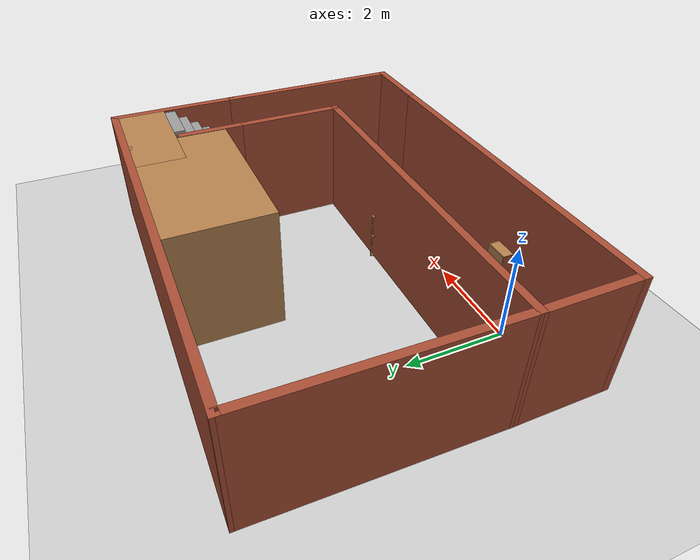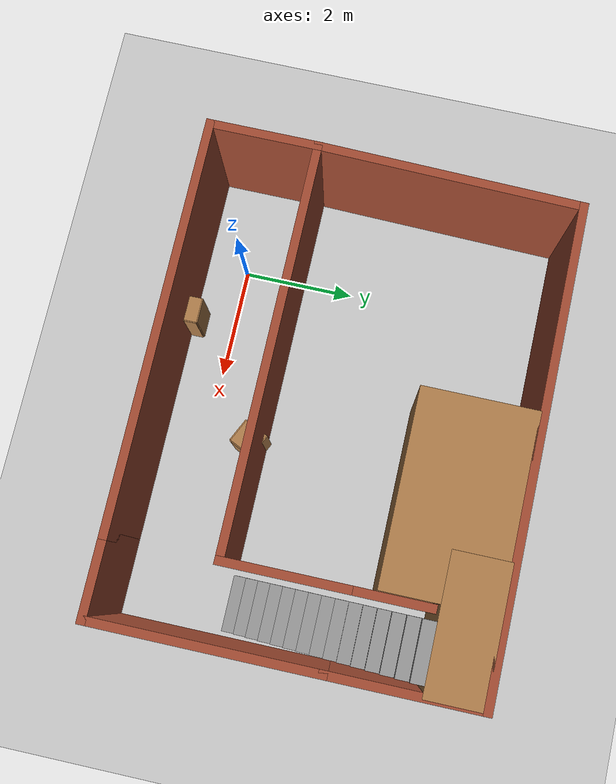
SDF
<sdf version="1.7">
 <world name="default">
  <model name="ground_plane">
   <static>1</static>
   <link name="link">
    <collision name="collision">
     <geometry><plane><normal>0 0 1</normal><size>100 100</size></plane></geometry>
     <surface>
      <contact><collide_bitmask>65535</collide_bitmask></contact>
      <friction><ode><mu>100</mu><mu2>50</mu2></ode></friction>
     </surface>
    </collision>
    <visual name="visual">
     <cast_shadows>0</cast_shadows>
     <geometry><plane><normal>0 0 1</normal><size>100 100</size></plane></geometry>
     <material>
      <script><uri>file://media/materials/scripts/gazebo.material</uri><name>Gazebo/Grey</name></script>
     </material>
    </visual>
   </link>
  </model>
  <model name="2F_DEMO">
   <pose>2.49908 2.39146 0 0 -0 0</pose>
   <link name="Stairs_0">
    <visual name="Stairs_0_Visual_0">
     <pose>3.55799 -1.19298 0.083333 0 -0 -3.14159</pose>
     <geometry><box><size>1 0.233333 0.166667</size></box></geometry>
     <material>
      <script><uri>file://media/materials/scripts/gazebo.material</uri><name>Gazebo/Grey</name></script>
      <ambient>1 1 1 1</ambient>
     </material>
     <meta><layer>0</layer></meta>
    </visual>
    <collision name="Stairs_0_Collision_0">
     <geometry><box><size>1 0.233333 0.166667</size></box></geometry>
     <pose>3.55799 -1.19298 0.083333 0 -0 -3.14159</pose>
    </collision>
    <visual name="Stairs_0_Visual_1">
     <pose>3.55799 -0.959651 0.25 0 -0 -3.14159</pose>
     <geometry><box><size>1 0.233333 0.166667</size></box></geometry>
     <material>
      <script><uri>file://media/materials/scripts/gazebo.material</uri><name>Gazebo/Grey</name></script>
      <ambient>1 1 1 1</ambient>
     </material>
     <meta><layer>0</layer></meta>
    </visual>
    <collision name="Stairs_0_Collision_1">
     <geometry><box><size>1 0.233333 0.166667</size></box></geometry>
     <pose>3.55799 -0.959651 0.25 0 -0 -3.14159</pose>
    </collision>
    <visual name="Stairs_0_Visual_2">
     <pose>3.55799 -0.726318 0.416667 0 -0 -3.14159</pose>
     <geometry><box><size>1 0.233333 0.166667</size></box></geometry>
     <material>
      <script><uri>file://media/materials/scripts/gazebo.material</uri><name>Gazebo/Grey</name></script>
      <ambient>1 1 1 1</ambient>
     </material>
     <meta><layer>0</layer></meta>
    </visual>
    <collision name="Stairs_0_Collision_2">
     <geometry><box><size>1 0.233333 0.166667</size></box></geometry>
     <pose>3.55799 -0.726318 0.416667 0 -0 -3.14159</pose>
    </collision>
    <visual name="Stairs_0_Visual_3">
     <pose>3.55799 -0.492984 0.583333 0 -0 -3.14159</pose>
     <geometry><box><size>1 0.233333 0.166667</size></box></geometry>
     <material>
      <script><uri>file://media/materials/scripts/gazebo.material</uri><name>Gazebo/Grey</name></script>
      <ambient>1 1 1 1</ambient>
     </material>
     <meta><layer>0</layer></meta>
    </visual>
    <collision name="Stairs_0_Collision_3">
     <geometry><box><size>1 0.233333 0.166667</size></box></geometry>
     <pose>3.55799 -0.492984 0.583333 0 -0 -3.14159</pose>
    </collision>
    <visual name="Stairs_0_Visual_4">
     <pose>3.55799 -0.259651 0.75 0 -0 -3.14159</pose>
     <geometry><box><size>1 0.233333 0.166667</size></box></geometry>
     <material>
      <script><uri>file://media/materials/scripts/gazebo.material</uri><name>Gazebo/Grey</name></script>
      <ambient>1 1 1 1</ambient>
     </material>
     <meta><layer>0</layer></meta>
    </visual>
    <collision name="Stairs_0_Collision_4">
     <geometry><box><size>1 0.233333 0.166667</size></box></geometry>
     <pose>3.55799 -0.259651 0.75 0 -0 -3.14159</pose>
    </collision>
    <visual name="Stairs_0_Visual_5">
     <pose>3.55799 -0.026318 0.916667 0 -0 -3.14159</pose>
     <geometry><box><size>1 0.233333 0.166667</size></box></geometry>
     <material>
      <script><uri>file://media/materials/scripts/gazebo.material</uri><name>Gazebo/Grey</name></script>
      <ambient>1 1 1 1</ambient>
     </material>
     <meta><layer>0</layer></meta>
    </visual>
    <collision name="Stairs_0_Collision_5">
     <geometry><box><size>1 0.233333 0.166667</size></box></geometry>
     <pose>3.55799 -0.026318 0.916667 0 -0 -3.14159</pose>
    </collision>
    <visual name="Stairs_0_Visual_6">
     <pose>3.55799 0.207016 1.08333 0 -0 -3.14159</pose>
     <geometry><box><size>1 0.233333 0.166667</size></box></geometry>
     <material>
      <script><uri>file://media/materials/scripts/gazebo.material</uri><name>Gazebo/Grey</name></script>
      <ambient>1 1 1 1</ambient>
     </material>
     <meta><layer>0</layer></meta>
    </visual>
    <collision name="Stairs_0_Collision_6">
     <geometry><box><size>1 0.233333 0.166667</size></box></geometry>
     <pose>3.55799 0.207016 1.08333 0 -0 -3.14159</pose>
    </collision>
    <visual name="Stairs_0_Visual_7">
     <pose>3.55799 0.440349 1.25 0 -0 -3.14159</pose>
     <geometry><box><size>1 0.233333 0.166667</size></box></geometry>
     <material>
      <script><uri>file://media/materials/scripts/gazebo.material</uri><name>Gazebo/Grey</name></script>
      <ambient>1 1 1 1</ambient>
     </material>
     <meta><layer>0</layer></meta>
    </visual>
    <collision name="Stairs_0_Collision_7">
     <geometry><box><size>1 0.233333 0.166667</size></box></geometry>
     <pose>3.55799 0.440349 1.25 0 -0 -3.14159</pose>
    </collision>
    <visual name="Stairs_0_Visual_8">
     <pose>3.55799 0.673683 1.41667 0 -0 -3.14159</pose>
     <geometry><box><size>1 0.233333 0.166667</size></box></geometry>
     <material>
      <script><uri>file://media/materials/scripts/gazebo.material</uri><name>Gazebo/Grey</name></script>
      <ambient>1 1 1 1</ambient>
     </material>
     <meta><layer>0</layer></meta>
    </visual>
    <collision name="Stairs_0_Collision_8">
     <geometry><box><size>1 0.233333 0.166667</size></box></geometry>
     <pose>3.55799 0.673683 1.41667 0 -0 -3.14159</pose>
    </collision>
    <visual name="Stairs_0_Visual_9">
     <pose>3.55799 0.907016 1.58333 0 -0 -3.14159</pose>
     <geometry><box><size>1 0.233333 0.166667</size></box></geometry>
     <material>
      <script><uri>file://media/materials/scripts/gazebo.material</uri><name>Gazebo/Grey</name></script>
      <ambient>1 1 1 1</ambient>
     </material>
     <meta><layer>0</layer></meta>
    </visual>
    <collision name="Stairs_0_Collision_9">
     <geometry><box><size>1 0.233333 0.166667</size></box></geometry>
     <pose>3.55799 0.907016 1.58333 0 -0 -3.14159</pose>
    </collision>
    <visual name="Stairs_0_Visual_10">
     <pose>3.55799 1.14035 1.75 0 -0 -3.14159</pose>
     <geometry><box><size>1 0.233333 0.166667</size></box></geometry>
     <material>
      <script><uri>file://media/materials/scripts/gazebo.material</uri><name>Gazebo/Grey</name></script>
      <ambient>1 1 1 1</ambient>
     </material>
     <meta><layer>0</layer></meta>
    </visual>
    <collision name="Stairs_0_Collision_10">
     <geometry><box><size>1 0.233333 0.166667</size></box></geometry>
     <pose>3.55799 1.14035 1.75 0 -0 -3.14159</pose>
    </collision>
    <visual name="Stairs_0_Visual_11">
     <pose>3.55799 1.37368 1.91667 0 -0 -3.14159</pose>
     <geometry><box><size>1 0.233333 0.166667</size></box></geometry>
     <material>
      <script><uri>file://media/materials/scripts/gazebo.material</uri><name>Gazebo/Grey</name></script>
      <ambient>1 1 1 1</ambient>
     </material>
     <meta><layer>0</layer></meta>
    </visual>
    <collision name="Stairs_0_Collision_11">
     <geometry><box><size>1 0.233333 0.166667</size></box></geometry>
     <pose>3.55799 1.37368 1.91667 0 -0 -3.14159</pose>
    </collision>
    <visual name="Stairs_0_Visual_12">
     <pose>3.55799 1.60702 2.08333 0 -0 -3.14159</pose>
     <geometry><box><size>1 0.233333 0.166667</size></box></geometry>
     <material>
      <script><uri>file://media/materials/scripts/gazebo.material</uri><name>Gazebo/Grey</name></script>
      <ambient>1 1 1 1</ambient>
     </material>
     <meta><layer>0</layer></meta>
    </visual>
    <collision name="Stairs_0_Collision_12">
     <geometry><box><size>1 0.233333 0.166667</size></box></geometry>
     <pose>3.55799 1.60702 2.08333 0 -0 -3.14159</pose>
    </collision>
    <visual name="Stairs_0_Visual_13">
     <pose>3.55799 1.84035 2.25 0 -0 -3.14159</pose>
     <geometry><box><size>1 0.233333 0.166667</size></box></geometry>
     <material>
      <script><uri>file://media/materials/scripts/gazebo.material</uri><name>Gazebo/Grey</name></script>
      <ambient>1 1 1 1</ambient>
     </material>
     <meta><layer>0</layer></meta>
    </visual>
    <collision name="Stairs_0_Collision_13">
     <geometry><box><size>1 0.233333 0.166667</size></box></geometry>
     <pose>3.55799 1.84035 2.25 0 -0 -3.14159</pose>
    </collision>
    <visual name="Stairs_0_Visual_14">
     <pose>3.55799 2.07368 2.41667 0 -0 -3.14159</pose>
     <geometry><box><size>1 0.233333 0.166667</size></box></geometry>
     <material>
      <script><uri>file://media/materials/scripts/gazebo.material</uri><name>Gazebo/Grey</name></script>
      <ambient>1 1 1 1</ambient>
     </material>
     <meta><layer>0</layer></meta>
    </visual>
    <collision name="Stairs_0_Collision_14">
     <geometry><box><size>1 0.233333 0.166667</size></box></geometry>
     <pose>3.55799 2.07368 2.41667 0 -0 -3.14159</pose>
    </collision>
   </link>
   <link name="Wall_10">
    <collision name="Wall_10_Collision">
     <geometry><box><size>7.25 0.15 2.5</size></box></geometry>
     <pose>0 0 1.25 0 -0 0</pose>
    </collision>
    <visual name="Wall_10_Visual">
     <pose>0 0 1.25 0 -0 0</pose>
     <geometry><box><size>7.25 0.15 2.5</size></box></geometry>
     <material>
      <script><uri>file://media/materials/scripts/gazebo.material</uri><name>Gazebo/Bricks</name></script>
      <ambient>1 1 1 1</ambient>
     </material>
     <meta><layer>0</layer></meta>
    </visual>
    <pose>-0.674189 -1.34936 0 0 -0 0</pose>
   </link>
   <link name="Wall_16">
    <collision name="Wall_16_Collision">
     <geometry><box><size>1.5 0.15 2.5</size></box></geometry>
     <pose>0 0 1.25 0 -0 0</pose>
    </collision>
    <visual name="Wall_16_Visual">
     <pose>0 0 1.25 0 -0 0</pose>
     <geometry><box><size>1.5 0.15 2.5</size></box></geometry>
     <material>
      <script><uri>file://media/materials/scripts/gazebo.material</uri><name>Gazebo/Bricks</name></script>
      <ambient>1 1 1 1</ambient>
     </material>
     <meta><layer>0</layer></meta>
    </visual>
    <pose>3.55081 -3.22581 0 0 -0 0</pose>
   </link>
   <link name="Wall_17">
    <collision name="Wall_17_Collision">
     <geometry><box><size>4 0.15 2.5</size></box></geometry>
     <pose>0 0 1.25 0 -0 0</pose>
    </collision>
    <visual name="Wall_17_Visual">
     <pose>0 0 1.25 0 -0 0</pose>
     <geometry><box><size>4 0.15 2.5</size></box></geometry>
     <material>
      <script><uri>file://media/materials/scripts/gazebo.material</uri><name>Gazebo/Bricks</name></script>
      <ambient>1 1 1 1</ambient>
     </material>
     <meta><layer>0</layer></meta>
    </visual>
    <pose>4.22581 -1.30081 0 0 -0 1.5708</pose>
   </link>
   <link name="Wall_19">
    <collision name="Wall_19_Collision">
     <geometry><box><size>2.22355 0.15 2.5</size></box></geometry>
     <pose>0 0 1.25 0 -0 0</pose>
    </collision>
    <visual name="Wall_19_Visual">
     <pose>0 0 1.25 0 -0 0</pose>
     <geometry><box><size>2.22355 0.15 2.5</size></box></geometry>
     <material>
      <script><uri>file://media/materials/scripts/gazebo.material</uri><name>Gazebo/Bricks</name></script>
      <ambient>1 1 1 1</ambient>
     </material>
     <meta><layer>0</layer></meta>
    </visual>
    <pose>2.87581 -0.312586 0 0 -0 1.5708</pose>
   </link>
   <link name="Wall_24">
    <collision name="Wall_24_Collision">
     <geometry><box><size>2.75 0.15 2.5</size></box></geometry>
     <pose>0 0 1.25 0 -0 0</pose>
    </collision>
    <visual name="Wall_24_Visual">
     <pose>0 0 1.25 0 -0 0</pose>
     <geometry><box><size>2.75 0.15 2.5</size></box></geometry>
     <material>
      <script><uri>file://media/materials/scripts/gazebo.material</uri><name>Gazebo/Bricks</name></script>
      <ambient>1 1 1 1</ambient>
     </material>
     <meta><layer>0</layer></meta>
    </visual>
    <pose>4.22581 1.92419 0 0 -0 1.5708</pose>
   </link>
   <link name="Wall_28">
    <collision name="Wall_28_Collision">
     <geometry><box><size>8.5 0.15 2.5</size></box></geometry>
     <pose>0 0 1.25 0 -0 0</pose>
    </collision>
    <visual name="Wall_28_Visual">
     <pose>0 0 1.25 0 -0 0</pose>
     <geometry><box><size>8.5 0.15 2.5</size></box></geometry>
     <material>
      <script><uri>file://media/materials/scripts/gazebo.material</uri><name>Gazebo/Bricks</name></script>
      <ambient>1 1 1 1</ambient>
     </material>
     <meta><layer>0</layer></meta>
    </visual>
    <pose>0.050811 3.22419 0 0 -0 3.14159</pose>
   </link>
   <link name="Wall_29">
    <collision name="Wall_29_Collision">
     <geometry><box><size>4.72464 0.15 2.5</size></box></geometry>
     <pose>0 0 1.25 0 -0 0</pose>
    </collision>
    <visual name="Wall_29_Visual">
     <pose>0 0 1.25 0 -0 0</pose>
     <geometry><box><size>4.72464 0.15 2.5</size></box></geometry>
     <material>
      <script><uri>file://media/materials/scripts/gazebo.material</uri><name>Gazebo/Bricks</name></script>
      <ambient>1 1 1 1</ambient>
     </material>
     <meta><layer>0</layer></meta>
    </visual>
    <pose>-4.17419 0.937414 0 0 -0 -1.59266</pose>
   </link>
   <link name="Wall_31">
    <collision name="Wall_31_Collision">
     <geometry><box><size>1.5 0.15 2.5</size></box></geometry>
     <pose>0 0 1.25 0 -0 0</pose>
    </collision>
    <visual name="Wall_31_Visual">
     <pose>0 0 1.25 0 -0 0</pose>
     <geometry><box><size>1.5 0.15 2.5</size></box></geometry>
     <material>
      <script><uri>file://media/materials/scripts/gazebo.material</uri><name>Gazebo/Bricks</name></script>
      <ambient>1 1 1 1</ambient>
     </material>
     <meta><layer>0</layer></meta>
    </visual>
    <pose>2.87581 1.39919 0 0 -0 1.5708</pose>
   </link>
   <link name="Wall_46">
    <collision name="Wall_46_Collision">
     <geometry><box><size>3.35 2 2.5</size></box></geometry>
     <pose>0 0 1.25 0 -0 0</pose>
    </collision>
    <visual name="Wall_46_Visual">
     <pose>0 0 1.25 0 -0 0</pose>
     <geometry><box><size>3.35 2 2.5</size></box></geometry>
     <material>
      <script><uri>file://media/materials/scripts/gazebo.material</uri><name>Gazebo/Wood</name></script>
      <ambient>1 1 1 1</ambient>
     </material>
     <meta><layer>0</layer></meta>
    </visual>
    <pose>1.11196 2.17261 0 0 -0 0</pose>
   </link>
   <link name="Wall_49">
    <collision name="Wall_49_Collision">
     <geometry><box><size>2.35 1 2.5</size></box></geometry>
     <pose>0 0 1.25 0 -0 0</pose>
    </collision>
    <visual name="Wall_49_Visual">
     <pose>0 0 1.25 0 -0 0</pose>
     <geometry><box><size>2.35 1 2.5</size></box></geometry>
     <material>
      <script><uri>file://media/materials/scripts/gazebo.material</uri><name>Gazebo/Wood</name></script>
      <ambient>1 1 1 1</ambient>
     </material>
     <meta><layer>0</layer></meta>
    </visual>
    <pose>3.08284 2.68861 0 0 -0 0</pose>
   </link>
   <link name="Wall_6">
    <collision name="Wall_6_Collision">
     <geometry><box><size>7.25 0.15 2.5</size></box></geometry>
     <pose>0 0 1.25 0 -0 0</pose>
    </collision>
    <visual name="Wall_6_Visual">
     <pose>0 0 1.25 0 -0 0</pose>
     <geometry><box><size>7.25 0.15 2.5</size></box></geometry>
     <material>
      <script><uri>file://media/materials/scripts/gazebo.material</uri><name>Gazebo/Bricks</name></script>
      <ambient>1 1 1 1</ambient>
     </material>
     <meta><layer>0</layer></meta>
    </visual>
    <pose>-0.674189 -3.22581 0 0 -0 0</pose>
   </link>
   <link name="Wall_9">
    <collision name="Wall_9_Collision">
     <geometry><box><size>2.02645 0.15 2.5</size></box></geometry>
     <pose>0 0 1.25 0 -0 0</pose>
    </collision>
    <visual name="Wall_9_Visual">
     <pose>0 0 1.25 0 -0 0</pose>
     <geometry><box><size>2.02645 0.15 2.5</size></box></geometry>
     <material>
      <script><uri>file://media/materials/scripts/gazebo.material</uri><name>Gazebo/Bricks</name></script>
      <ambient>1 1 1 1</ambient>
     </material>
     <meta><layer>0</layer></meta>
    </visual>
    <pose>-4.22419 -2.28759 0 0 -0 1.5708</pose>
   </link>
   <static>1</static>
  </model>
  <model name="cabinet">
   <static>1</static>
   <link name="cabinet_bottom_plate">
    <inertial>
     <pose>0 0 -1 0 -0 0</pose>
     <inertia><ixx>2.05</ixx><ixy>0</ixy><ixz>0</ixz><iyy>2.05</iyy><iyz>0</iyz><izz>2.05</izz></inertia>
     <mass>25</mass>
    </inertial>
    <collision name="cabinet_bottom_plate_geom">
     <pose>0 0 0.01 0 -0 0</pose>
     <geometry><box><size>0.45 0.45 0.02</size></box></geometry>
    </collision>
    <visual name="cabinet_bottom_plate_geom_visual">
     <pose>0 0 0.01 0 -0 0</pose>
     <geometry><box><size>0.45 0.45 0.02</size></box></geometry>
     <material>
      <script><uri>file://media/materials/scripts/gazebo.material</uri><name>Gazebo/Wood</name></script>
     </material>
    </visual>
    <collision name="cabinet_bottom_plate_geom_cabinet_back_plate">
     <pose>0.235 0 0.51 0 -0 0</pose>
     <geometry><box><size>0.02 0.45 1.02</size></box></geometry>
    </collision>
    <visual name="cabinet_bottom_plate_geom_cabinet_back_plate_visual">
     <pose>0.235 0 0.51 0 -0 0</pose>
     <geometry><box><size>0.02 0.45 1.02</size></box></geometry>
     <material>
      <script><uri>file://media/materials/scripts/gazebo.material</uri><name>Gazebo/Wood</name></script>
     </material>
    </visual>
    <collision name="cabinet_bottom_plate_geom_cabinet_left_plate">
     <pose>0 0.235 0.51 0 -0 0</pose>
     <geometry><box><size>0.45 0.02 1.02</size></box></geometry>
    </collision>
    <visual name="cabinet_bottom_plate_geom_cabinet_left_plate_visual">
     <pose>0 0.235 0.51 0 -0 0</pose>
     <geometry><box><size>0.45 0.02 1.02</size></box></geometry>
     <material>
      <script><uri>file://media/materials/scripts/gazebo.material</uri><name>Gazebo/Wood</name></script>
     </material>
    </visual>
    <collision name="cabinet_bottom_plate_geom_cabinet_middle_plate">
     <pose>0 0 0.51 0 -0 0</pose>
     <geometry><box><size>0.45 0.45 0.02</size></box></geometry>
    </collision>
    <visual name="cabinet_bottom_plate_geom_cabinet_middle_plate_visual">
     <pose>0 0 0.51 0 -0 0</pose>
     <geometry><box><size>0.45 0.45 0.02</size></box></geometry>
     <material>
      <script><uri>file://media/materials/scripts/gazebo.material</uri><name>Gazebo/Wood</name></script>
     </material>
    </visual>
    <collision name="cabinet_bottom_plate_geom_cabinet_right_plate">
     <pose>0 -0.235 0.51 0 -0 0</pose>
     <geometry><box><size>0.45 0.02 1.02</size></box></geometry>
    </collision>
    <visual name="cabinet_bottom_plate_geom_cabinet_right_plate_visual">
     <pose>0 -0.235 0.51 0 -0 0</pose>
     <geometry><box><size>0.45 0.02 1.02</size></box></geometry>
     <material>
      <script><uri>file://media/materials/scripts/gazebo.material</uri><name>Gazebo/Wood</name></script>
     </material>
    </visual>
    <collision name="cabinet_bottom_plate_geom_cabinet_top_plate">
     <pose>0 0 1.01 0 -0 0</pose>
     <geometry><box><size>0.45 0.45 0.02</size></box></geometry>
    </collision>
    <visual name="cabinet_bottom_plate_geom_cabinet_top_plate_visual">
     <pose>0 0 1.01 0 -0 0</pose>
     <geometry><box><size>0.45 0.45 0.02</size></box></geometry>
     <material>
      <script><uri>file://media/materials/scripts/gazebo.material</uri><name>Gazebo/Wood</name></script>
     </material>
    </visual>
   </link>
   <pose>1.13298 -0.755288 0 0 -0 0</pose>
  </model>
  <model name="cabinet_0">
   <static>1</static>
   <link name="cabinet_bottom_plate">
    <inertial>
     <pose>0 0 -1 0 -0 0</pose>
     <inertia><ixx>2.05</ixx><ixy>0</ixy><ixz>0</ixz><iyy>2.05</iyy><iyz>0</iyz><izz>2.05</izz></inertia>
     <mass>25</mass>
    </inertial>
    <collision name="cabinet_bottom_plate_geom">
     <pose>0 0 0.01 0 -0 0</pose>
     <geometry><box><size>0.45 0.45 0.02</size></box></geometry>
    </collision>
    <visual name="cabinet_bottom_plate_geom_visual">
     <pose>0 0 0.01 0 -0 0</pose>
     <geometry><box><size>0.45 0.45 0.02</size></box></geometry>
     <material>
      <script><uri>file://media/materials/scripts/gazebo.material</uri><name>Gazebo/Wood</name></script>
     </material>
    </visual>
    <collision name="cabinet_bottom_plate_geom_cabinet_back_plate">
     <pose>0.235 0 0.51 0 -0 0</pose>
     <geometry><box><size>0.02 0.45 1.02</size></box></geometry>
    </collision>
    <visual name="cabinet_bottom_plate_geom_cabinet_back_plate_visual">
     <pose>0.235 0 0.51 0 -0 0</pose>
     <geometry><box><size>0.02 0.45 1.02</size></box></geometry>
     <material>
      <script><uri>file://media/materials/scripts/gazebo.material</uri><name>Gazebo/Wood</name></script>
     </material>
    </visual>
    <collision name="cabinet_bottom_plate_geom_cabinet_left_plate">
     <pose>0 0.235 0.51 0 -0 0</pose>
     <geometry><box><size>0.45 0.02 1.02</size></box></geometry>
    </collision>
    <visual name="cabinet_bottom_plate_geom_cabinet_left_plate_visual">
     <pose>0 0.235 0.51 0 -0 0</pose>
     <geometry><box><size>0.45 0.02 1.02</size></box></geometry>
     <material>
      <script><uri>file://media/materials/scripts/gazebo.material</uri><name>Gazebo/Wood</name></script>
     </material>
    </visual>
    <collision name="cabinet_bottom_plate_geom_cabinet_middle_plate">
     <pose>0 0 0.51 0 -0 0</pose>
     <geometry><box><size>0.45 0.45 0.02</size></box></geometry>
    </collision>
    <visual name="cabinet_bottom_plate_geom_cabinet_middle_plate_visual">
     <pose>0 0 0.51 0 -0 0</pose>
     <geometry><box><size>0.45 0.45 0.02</size></box></geometry>
     <material>
      <script><uri>file://media/materials/scripts/gazebo.material</uri><name>Gazebo/Wood</name></script>
     </material>
    </visual>
    <collision name="cabinet_bottom_plate_geom_cabinet_right_plate">
     <pose>0 -0.235 0.51 0 -0 0</pose>
     <geometry><box><size>0.45 0.02 1.02</size></box></geometry>
    </collision>
    <visual name="cabinet_bottom_plate_geom_cabinet_right_plate_visual">
     <pose>0 -0.235 0.51 0 -0 0</pose>
     <geometry><box><size>0.45 0.02 1.02</size></box></geometry>
     <material>
      <script><uri>file://media/materials/scripts/gazebo.material</uri><name>Gazebo/Wood</name></script>
     </material>
    </visual>
    <collision name="cabinet_bottom_plate_geom_cabinet_top_plate">
     <pose>0 0 1.01 0 -0 0</pose>
     <geometry><box><size>0.45 0.45 0.02</size></box></geometry>
    </collision>
    <visual name="cabinet_bottom_plate_geom_cabinet_top_plate_visual">
     <pose>0 0 1.01 0 -0 0</pose>
     <geometry><box><size>0.45 0.45 0.02</size></box></geometry>
     <material>
      <script><uri>file://media/materials/scripts/gazebo.material</uri><name>Gazebo/Wood</name></script>
     </material>
    </visual>
   </link>
   <pose>3.18619 0.865197 0 0 0 -0.444603</pose>
  </model>
 </world>
</sdf>
